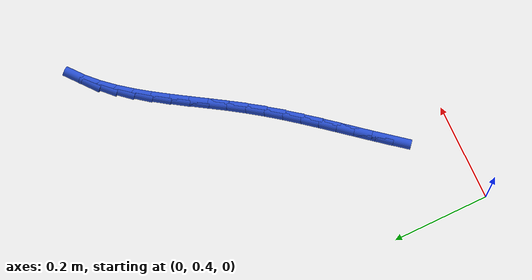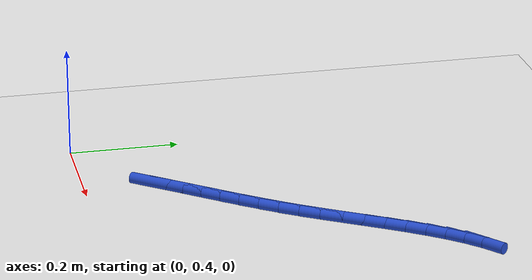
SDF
<sdf version="1.6">
 <world name="default">
  <model name="ground_plane">
   <static>1</static>
   <link name="link">
    <collision name="collision">
     <geometry><plane><normal>0 0 1</normal><size>100 100</size></plane></geometry>
     <surface><friction><ode><mu>100</mu><mu2>50</mu2></ode></friction></surface>
    </collision>
    <visual name="visual">
     <cast_shadows>0</cast_shadows>
     <geometry><plane><normal>0 0 1</normal><size>100 100</size></plane></geometry>
     <material>
      <script><uri>file://media/materials/scripts/gazebo.material</uri><name>Gazebo/WhiteGlow</name></script>
     </material>
    </visual>
   </link>
  </model>
  <model name="line">
   <link name="link_16">
    <pose>0.1820736025530191 0.5186533888517892 0.01 0 1.57 0.8895653059646416</pose>
    <collision name="collision">
     <geometry><cylinder><radius>0.01</radius><length>0.08</length></cylinder></geometry>
    </collision>
    <visual name="visual">
     <material>
      <script><name>Gazebo/Blue</name><uri>file://media/materials/scripts/gazebo.material</uri></script>
     </material>
     <geometry><cylinder><radius>0.01</radius><length>0.08</length></cylinder></geometry>
    </visual>
   </link>
   <link name="link_17">
    <pose>0.20456189319778326 0.5463927578184484 0.01 0 1.57 0.8803960994645494</pose>
    <collision name="collision">
     <geometry><cylinder><radius>0.01</radius><length>0.08</length></cylinder></geometry>
    </collision>
    <visual name="visual">
     <material>
      <script><name>Gazebo/Blue</name><uri>file://media/materials/scripts/gazebo.material</uri></script>
     </material>
     <geometry><cylinder><radius>0.01</radius><length>0.08</length></cylinder></geometry>
    </visual>
   </link>
   <link name="link_18">
    <pose>0.22751178499801245 0.5741768216143752 0.01 0 1.57 0.8774365501781685</pose>
    <collision name="collision">
     <geometry><cylinder><radius>0.01</radius><length>0.08</length></cylinder></geometry>
    </collision>
    <visual name="visual">
     <material>
      <script><name>Gazebo/Blue</name><uri>file://media/materials/scripts/gazebo.material</uri></script>
     </material>
     <geometry><cylinder><radius>0.01</radius><length>0.08</length></cylinder></geometry>
    </visual>
   </link>
   <link name="link_19">
    <pose>0.2507464275234268 0.602136672811176 0.01 0 1.57 0.8805230590940539</pose>
    <collision name="collision">
     <geometry><cylinder><radius>0.01</radius><length>0.08</length></cylinder></geometry>
    </collision>
    <visual name="visual">
     <material>
      <script><name>Gazebo/Blue</name><uri>file://media/materials/scripts/gazebo.material</uri></script>
     </material>
     <geometry><cylinder><radius>0.01</radius><length>0.08</length></cylinder></geometry>
    </visual>
   </link>
   <link name="link_20">
    <pose>0.27408897034374585 0.6304034039804571 0.01 0 1.57 0.8895084305679589</pose>
    <collision name="collision">
     <geometry><cylinder><radius>0.01</radius><length>0.08</length></cylinder></geometry>
    </collision>
    <visual name="visual">
     <material>
      <script><name>Gazebo/Blue</name><uri>file://media/materials/scripts/gazebo.material</uri></script>
     </material>
     <geometry><cylinder><radius>0.01</radius><length>0.08</length></cylinder></geometry>
    </visual>
   </link>
   <link name="link_21">
    <pose>0.2973625630286899 0.6591081076938254 0.01 0 1.57 0.9042576268937171</pose>
    <collision name="collision">
     <geometry><cylinder><radius>0.01</radius><length>0.08</length></cylinder></geometry>
    </collision>
    <visual name="visual">
     <material>
      <script><name>Gazebo/Blue</name><uri>file://media/materials/scripts/gazebo.material</uri></script>
     </material>
     <geometry><cylinder><radius>0.01</radius><length>0.08</length></cylinder></geometry>
    </visual>
   </link>
   <link name="link_22">
    <pose>0.3203903551479789 0.6883818765228871 0.01 0 1.57 0.9246380299493415</pose>
    <collision name="collision">
     <geometry><cylinder><radius>0.01</radius><length>0.08</length></cylinder></geometry>
    </collision>
    <visual name="visual">
     <material>
      <script><name>Gazebo/Blue</name><uri>file://media/materials/scripts/gazebo.material</uri></script>
     </material>
     <geometry><cylinder><radius>0.01</radius><length>0.08</length></cylinder></geometry>
    </visual>
   </link>
   <link name="link_23">
    <pose>0.34299549627133263 0.7183558030392487 0.01 0 1.57 0.9505050984474731</pose>
    <collision name="collision">
     <geometry><cylinder><radius>0.01</radius><length>0.08</length></cylinder></geometry>
    </collision>
    <visual name="visual">
     <material>
      <script><name>Gazebo/Blue</name><uri>file://media/materials/scripts/gazebo.material</uri></script>
     </material>
     <geometry><cylinder><radius>0.01</radius><length>0.08</length></cylinder></geometry>
    </visual>
   </link>
   <link name="link_24">
    <pose>0.3650011359684713 0.7491609798145169 0.01 0 1.57 0.9790572160227771</pose>
    <collision name="collision">
     <geometry><cylinder><radius>0.01</radius><length>0.08</length></cylinder></geometry>
    </collision>
    <visual name="visual">
     <material>
      <script><name>Gazebo/Blue</name><uri>file://media/materials/scripts/gazebo.material</uri></script>
     </material>
     <geometry><cylinder><radius>0.01</radius><length>0.08</length></cylinder></geometry>
    </visual>
   </link>
   <link name="link_25">
    <pose>0.3862955159926791 0.7808453984605214 0.01 0 1.57 0.9984779983182205</pose>
    <collision name="collision">
     <geometry><cylinder><radius>0.01</radius><length>0.08</length></cylinder></geometry>
    </collision>
    <visual name="visual">
     <material>
      <script><name>Gazebo/Blue</name><uri>file://media/materials/scripts/gazebo.material</uri></script>
     </material>
     <geometry><cylinder><radius>0.01</radius><length>0.08</length></cylinder></geometry>
    </visual>
   </link>
   <link name="link_26">
    <pose>0.4070623572586121 0.8130798224710698 0.01 0 1.57 1.0057940690727885</pose>
    <collision name="collision">
     <geometry><cylinder><radius>0.01</radius><length>0.08</length></cylinder></geometry>
    </collision>
    <visual name="visual">
     <material>
      <script><name>Gazebo/Blue</name><uri>file://media/materials/scripts/gazebo.material</uri></script>
     </material>
     <geometry><cylinder><radius>0.01</radius><length>0.08</length></cylinder></geometry>
    </visual>
   </link>
   <link name="link_27">
    <pose>0.42756918036161845 0.8454280311597936 0.01 0 1.57 1.001088027684111</pose>
    <collision name="collision">
     <geometry><cylinder><radius>0.01</radius><length>0.08</length></cylinder></geometry>
    </collision>
    <visual name="visual">
     <material>
      <script><name>Gazebo/Blue</name><uri>file://media/materials/scripts/gazebo.material</uri></script>
     </material>
     <geometry><cylinder><radius>0.01</radius><length>0.08</length></cylinder></geometry>
    </visual>
   </link>
   <link name="link_28">
    <pose>0.4480835114326422 0.87745379677322 0.01 0 1.57 0.9840205954440453</pose>
    <collision name="collision">
     <geometry><cylinder><radius>0.01</radius><length>0.08</length></cylinder></geometry>
    </collision>
    <visual name="visual">
     <material>
      <script><name>Gazebo/Blue</name><uri>file://media/materials/scripts/gazebo.material</uri></script>
     </material>
     <geometry><cylinder><radius>0.01</radius><length>0.08</length></cylinder></geometry>
    </visual>
   </link>
   <link name="link_29">
    <pose>0.4688728766026268 0.9087208915578743 0.01 0 1.57 0.9538180072738426</pose>
    <collision name="collision">
     <geometry><cylinder><radius>0.01</radius><length>0.08</length></cylinder></geometry>
    </collision>
    <visual name="visual">
     <material>
      <script><name>Gazebo/Blue</name><uri>file://media/materials/scripts/gazebo.material</uri></script>
     </material>
     <geometry><cylinder><radius>0.01</radius><length>0.08</length></cylinder></geometry>
    </visual>
   </link>
   <link name="link_30">
    <pose>0.49020480200251626 0.938793087760284 0.01 0 1.57 0.9092893292387213</pose>
    <collision name="collision">
     <geometry><cylinder><radius>0.01</radius><length>0.08</length></cylinder></geometry>
    </collision>
    <visual name="visual">
     <material>
      <script><name>Gazebo/Blue</name><uri>file://media/materials/scripts/gazebo.material</uri></script>
     </material>
     <geometry><cylinder><radius>0.01</radius><length>0.08</length></cylinder></geometry>
    </visual>
   </link>
   <link name="link_31">
    <pose>0.5123468137632543 0.9672341576269753 0.01 0 1.57 0.8489117160318093</pose>
    <collision name="collision">
     <geometry><cylinder><radius>0.01</radius><length>0.08</length></cylinder></geometry>
    </collision>
    <visual name="visual">
     <material>
      <script><name>Gazebo/Blue</name><uri>file://media/materials/scripts/gazebo.material</uri></script>
     </material>
     <geometry><cylinder><radius>0.01</radius><length>0.08</length></cylinder></geometry>
    </visual>
   </link>
   <link name="link_32">
    <pose>0.5355664380157849 0.9936078734044744 0.01 0 1.57 0.7710576492510185</pose>
    <collision name="collision">
     <geometry><cylinder><radius>0.01</radius><length>0.08</length></cylinder></geometry>
    </collision>
    <visual name="visual">
     <material>
      <script><name>Gazebo/Blue</name><uri>file://media/materials/scripts/gazebo.material</uri></script>
     </material>
     <geometry><cylinder><radius>0.01</radius><length>0.08</length></cylinder></geometry>
    </visual>
   </link>
   <link name="link_33">
    <pose>0.5601312008910515 1.0174780073393082 0.01 0 1.57 0.674470268702453</pose>
    <collision name="collision">
     <geometry><cylinder><radius>0.01</radius><length>0.08</length></cylinder></geometry>
    </collision>
    <visual name="visual">
     <material>
      <script><name>Gazebo/Blue</name><uri>file://media/materials/scripts/gazebo.material</uri></script>
     </material>
     <geometry><cylinder><radius>0.01</radius><length>0.08</length></cylinder></geometry>
    </visual>
   </link>
  </model>
 </world>
</sdf>
